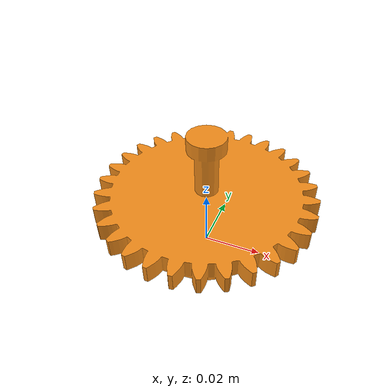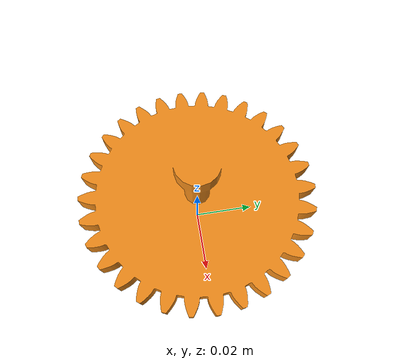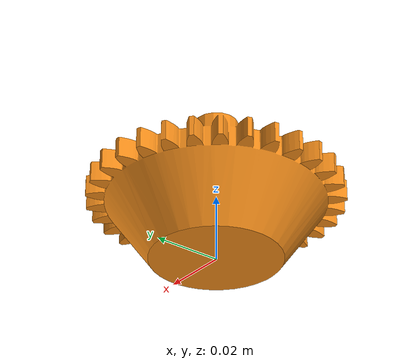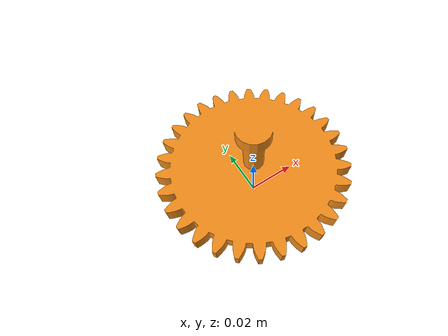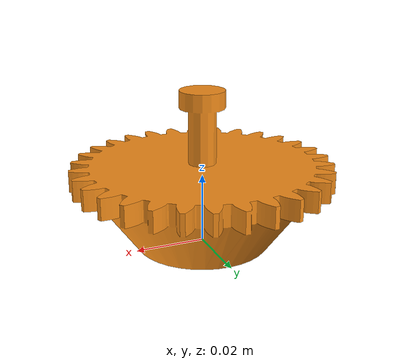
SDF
<?xml version="1.0" encoding="UTF-8"?>
<sdf version="1.5">
    <model name="sku_part_medium_gear">
            <static>0</static>
            <link name="link1">
                <velocity_decay>
                    <angular>
             		.0005
             		</angular>
                </velocity_decay>
                <collision name="collision1">
                    <pose frame="">0 0 0 0 0 0</pose>
                    <geometry>
                        <mesh>
#ifdef HANDLES
                            <scale>1 1 1</scale>
                            <uri>model://gear_support/meshes/solid_medium_gear2.stl</uri>
#else
                            <scale>0.0254 0.0254 0.0254</scale>
                            <uri>model://gear_support/meshes/medium_gear.stl</uri>
#endif
                        </mesh>
                    </geometry>
                    <max_contacts>10</max_contacts>
#ifdef ODE
                    <surface>
                        <contact>
                            <ode>
                                <max_vel>0.1</max_vel>
                                <min_depth>0.001</min_depth>
                            </ode>
                        </contact>
                        <bounce />
                        <friction>
                            <ode>
                                <mu>1.0</mu>
                                <mu2>1.0</mu2>
                            </ode>
                        </friction>
                    </surface>
#endif
                </collision>
                <visual name="visual1">
                    <pose frame="">0 0 0 0 0 0</pose>
                    <geometry>
                        <mesh>
#ifdef HANDLES
                            <scale>1 1 1</scale>
                            <uri>model://gear_support/meshes/solid_medium_gear2.stl</uri>
#else
                            <scale>0.0254 0.0254 0.0254</scale>
                            <uri>model://gear_support/meshes/medium_gear.stl</uri>
#endif
                        </mesh>
                    </geometry>
                    <material>
                        <script>
                            <name>Gazebo/Orange</name>
                            <uri>__default__</uri>
                        </script>
                    </material>
                </visual>
                <inertial>
                    <mass>0.02</mass>
                    <inertia>
                        <ixx>4.78233711e+00</ixx>
                        <ixy>2.06443170e-09</ixy>
                        <ixz>3.14256508e-00</ixz>
                        <iyy>4.78233728e+00</iyy>
                        <iyz>1.83990112e-08</iyz>
                        <izz>2.44284722e-01</izz>
                    </inertia>
                </inertial>
                <self_collide>0</self_collide>
                <kinematic> KINEMATIC </kinematic>
                <gravity>1</gravity>
            </link>
    </model>
</sdf>
